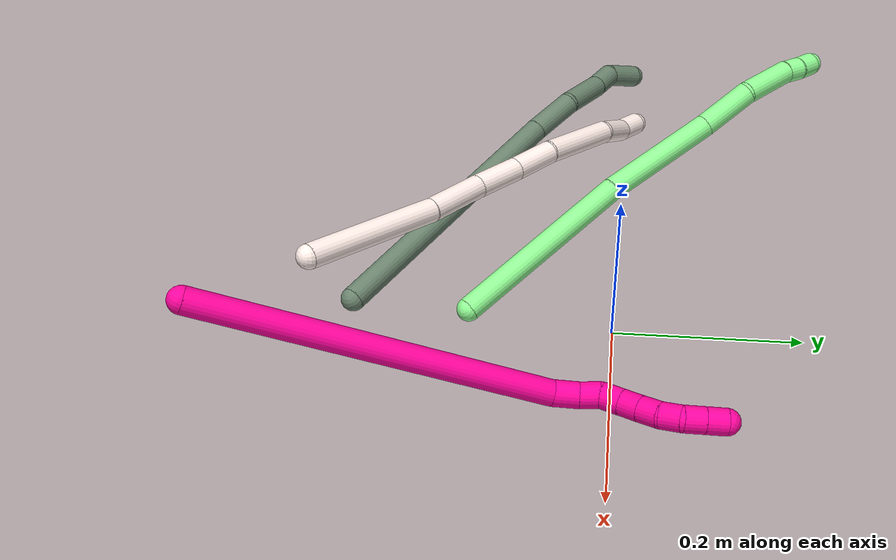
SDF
<sdf version="1.7">
 <world name="default">
  <model name="11">
   <static>0</static>
   <link name="11">
    <collision name="collision-cylinder-e_1_1_4">
     <pose>-0.00525 0.008821 -0.072069 -3.0198 -0.072176 1.06925</pose>
     <geometry><cylinder><radius>0.0125</radius><length>0.145593</length></cylinder></geometry>
     <surface>
      <friction><ode><mu>1.16</mu><mu2>1.16</mu2><slip1>0</slip1><slip2>0</slip2></ode></friction>
      <contact><ode><kp>1e+06</kp><kd>1</kd><max_vel>0</max_vel><min_depth>0.001</min_depth></ode></contact>
     </surface>
    </collision>
    <visual name="visual-cylinder-e_1_1_4">
     <pose>-0.00525 0.008821 -0.072069 -3.0198 -0.072176 1.06925</pose>
     <geometry><cylinder><radius>0.0125</radius><length>0.145593</length></cylinder></geometry>
     <material><ambient>1 0.933333 0.909804 1</ambient></material>
    </visual>
    <collision name="collision-cylinder-e_2_4_5">
     <pose>-0.016305 0.022563 -0.176524 -2.9908 -0.175404 1.72206</pose>
     <geometry><cylinder><radius>0.0125</radius><length>0.066535</length></cylinder></geometry>
     <surface>
      <friction><ode><mu>1.16</mu><mu2>1.16</mu2><slip1>0</slip1><slip2>0</slip2></ode></friction>
      <contact><ode><kp>1e+06</kp><kd>1</kd><max_vel>0</max_vel><min_depth>0.001</min_depth></ode></contact>
     </surface>
    </collision>
    <visual name="visual-cylinder-e_2_4_5">
     <pose>-0.016305 0.022563 -0.176524 -2.9908 -0.175404 1.72206</pose>
     <geometry><cylinder><radius>0.0125</radius><length>0.066535</length></cylinder></geometry>
     <material><ambient>1 0.933333 0.909804 1</ambient></material>
    </visual>
    <collision name="collision-cylinder-e_3_5_6">
     <pose>-0.024518 0.032556 -0.234959 -2.94928 -0.090473 0.87761</pose>
     <geometry><cylinder><radius>0.0125</radius><length>0.053295</length></cylinder></geometry>
     <surface>
      <friction><ode><mu>1.16</mu><mu2>1.16</mu2><slip1>0</slip1><slip2>0</slip2></ode></friction>
      <contact><ode><kp>1e+06</kp><kd>1</kd><max_vel>0</max_vel><min_depth>0.001</min_depth></ode></contact>
     </surface>
    </collision>
    <visual name="visual-cylinder-e_3_5_6">
     <pose>-0.024518 0.032556 -0.234959 -2.94928 -0.090473 0.87761</pose>
     <geometry><cylinder><radius>0.0125</radius><length>0.053295</length></cylinder></geometry>
     <material><ambient>1 0.933333 0.909804 1</ambient></material>
    </visual>
    <collision name="collision-cylinder-e_4_6_7">
     <pose>-0.029301 0.043234 -0.285303 -2.91483 -0.094997 0.790913</pose>
     <geometry><cylinder><radius>0.0125</radius><length>0.050094</length></cylinder></geometry>
     <surface>
      <friction><ode><mu>1.16</mu><mu2>1.16</mu2><slip1>0</slip1><slip2>0</slip2></ode></friction>
      <contact><ode><kp>1e+06</kp><kd>1</kd><max_vel>0</max_vel><min_depth>0.001</min_depth></ode></contact>
     </surface>
    </collision>
    <visual name="visual-cylinder-e_4_6_7">
     <pose>-0.029301 0.043234 -0.285303 -2.91483 -0.094997 0.790913</pose>
     <geometry><cylinder><radius>0.0125</radius><length>0.050094</length></cylinder></geometry>
     <material><ambient>1 0.933333 0.909804 1</ambient></material>
    </visual>
    <collision name="collision-cylinder-e_5_7_8">
     <pose>-0.039821 0.050392 -0.357003 -3.10885 -0.170051 2.76201</pose>
     <geometry><cylinder><radius>0.0125</radius><length>0.096247</length></cylinder></geometry>
     <surface>
      <friction><ode><mu>1.16</mu><mu2>1.16</mu2><slip1>0</slip1><slip2>0</slip2></ode></friction>
      <contact><ode><kp>1e+06</kp><kd>1</kd><max_vel>0</max_vel><min_depth>0.001</min_depth></ode></contact>
     </surface>
    </collision>
    <visual name="visual-cylinder-e_5_7_8">
     <pose>-0.039821 0.050392 -0.357003 -3.10885 -0.170051 2.76201</pose>
     <geometry><cylinder><radius>0.0125</radius><length>0.096247</length></cylinder></geometry>
     <material><ambient>1 0.933333 0.909804 1</ambient></material>
    </visual>
    <collision name="collision-cylinder-e_6_8_9">
     <pose>-0.057037 0.044581 -0.430078 2.86223 -0.32747 -1.73145</pose>
     <geometry><cylinder><radius>0.0125</radius><length>0.056412</length></cylinder></geometry>
     <surface>
      <friction><ode><mu>1.16</mu><mu2>1.16</mu2><slip1>0</slip1><slip2>0</slip2></ode></friction>
      <contact><ode><kp>1e+06</kp><kd>1</kd><max_vel>0</max_vel><min_depth>0.001</min_depth></ode></contact>
     </surface>
    </collision>
    <visual name="visual-cylinder-e_6_8_9">
     <pose>-0.057037 0.044581 -0.430078 2.86223 -0.32747 -1.73145</pose>
     <geometry><cylinder><radius>0.0125</radius><length>0.056412</length></cylinder></geometry>
     <material><ambient>1 0.933333 0.909804 1</ambient></material>
    </visual>
    <collision name="collision-cylinder-e_7_9_2">
     <pose>-0.069542 0.037802 -0.471276 -3.10389 -0.217436 2.79949</pose>
     <geometry><cylinder><radius>0.0125</radius><length>0.031825</length></cylinder></geometry>
     <surface>
      <friction><ode><mu>1.16</mu><mu2>1.16</mu2><slip1>0</slip1><slip2>0</slip2></ode></friction>
      <contact><ode><kp>1e+06</kp><kd>1</kd><max_vel>0</max_vel><min_depth>0.001</min_depth></ode></contact>
     </surface>
    </collision>
    <visual name="visual-cylinder-e_7_9_2">
     <pose>-0.069542 0.037802 -0.471276 -3.10389 -0.217436 2.79949</pose>
     <geometry><cylinder><radius>0.0125</radius><length>0.031825</length></cylinder></geometry>
     <material><ambient>1 0.933333 0.909804 1</ambient></material>
    </visual>
    <collision name="collision-sphere-2">
     <pose>-0.072975 0.038388 -0.486803 0 -0 0</pose>
     <geometry><sphere><radius>0.0125</radius></sphere></geometry>
     <surface>
      <friction><ode><mu>1.16</mu><mu2>1.16</mu2><slip1>0</slip1><slip2>0</slip2></ode></friction>
      <contact><ode><kp>1e+06</kp><kd>1</kd><max_vel>0</max_vel><min_depth>0.001</min_depth></ode></contact>
     </surface>
    </collision>
    <visual name="visual-sphere-2">
     <pose>-0.072975 0.038388 -0.486803 0 -0 0</pose>
     <geometry><sphere><radius>0.0125</radius></sphere></geometry>
     <material><ambient>1 0.933333 0.909804 1</ambient></material>
    </visual>
    <collision name="collision-sphere-9">
     <pose>-0.06611 0.037217 -0.45575 0 -0 0</pose>
     <geometry><sphere><radius>0.0125</radius></sphere></geometry>
     <surface>
      <friction><ode><mu>1.16</mu><mu2>1.16</mu2><slip1>0</slip1><slip2>0</slip2></ode></friction>
      <contact><ode><kp>1e+06</kp><kd>1</kd><max_vel>0</max_vel><min_depth>0.001</min_depth></ode></contact>
     </surface>
    </collision>
    <visual name="visual-sphere-9">
     <pose>-0.06611 0.037217 -0.45575 0 -0 0</pose>
     <geometry><sphere><radius>0.0125</radius></sphere></geometry>
     <material><ambient>1 0.933333 0.909804 1</ambient></material>
    </visual>
    <collision name="collision-sphere-4">
     <pose>-0.010499 0.017642 -0.144139 0 -0 0</pose>
     <geometry><sphere><radius>0.0125</radius></sphere></geometry>
     <surface>
      <friction><ode><mu>1.16</mu><mu2>1.16</mu2><slip1>0</slip1><slip2>0</slip2></ode></friction>
      <contact><ode><kp>1e+06</kp><kd>1</kd><max_vel>0</max_vel><min_depth>0.001</min_depth></ode></contact>
     </surface>
    </collision>
    <visual name="visual-sphere-4">
     <pose>-0.010499 0.017642 -0.144139 0 -0 0</pose>
     <geometry><sphere><radius>0.0125</radius></sphere></geometry>
     <material><ambient>1 0.933333 0.909804 1</ambient></material>
    </visual>
    <collision name="collision-sphere-1">
     <geometry><sphere><radius>0.0125</radius></sphere></geometry>
     <surface>
      <friction><ode><mu>1.16</mu><mu2>1.16</mu2><slip1>0</slip1><slip2>0</slip2></ode></friction>
      <contact><ode><kp>1e+06</kp><kd>1</kd><max_vel>0</max_vel><min_depth>0.001</min_depth></ode></contact>
     </surface>
    </collision>
    <visual name="visual-sphere-1">
     <geometry><sphere><radius>0.0125</radius></sphere></geometry>
     <material><ambient>1 0.933333 0.909804 1</ambient></material>
    </visual>
    <collision name="collision-sphere-8">
     <pose>-0.047965 0.051945 -0.404407 0 -0 0</pose>
     <geometry><sphere><radius>0.0125</radius></sphere></geometry>
     <surface>
      <friction><ode><mu>1.16</mu><mu2>1.16</mu2><slip1>0</slip1><slip2>0</slip2></ode></friction>
      <contact><ode><kp>1e+06</kp><kd>1</kd><max_vel>0</max_vel><min_depth>0.001</min_depth></ode></contact>
     </surface>
    </collision>
    <visual name="visual-sphere-8">
     <pose>-0.047965 0.051945 -0.404407 0 -0 0</pose>
     <geometry><sphere><radius>0.0125</radius></sphere></geometry>
     <material><ambient>1 0.933333 0.909804 1</ambient></material>
    </visual>
    <collision name="collision-sphere-5">
     <pose>-0.02211 0.027484 -0.20891 0 -0 0</pose>
     <geometry><sphere><radius>0.0125</radius></sphere></geometry>
     <surface>
      <friction><ode><mu>1.16</mu><mu2>1.16</mu2><slip1>0</slip1><slip2>0</slip2></ode></friction>
      <contact><ode><kp>1e+06</kp><kd>1</kd><max_vel>0</max_vel><min_depth>0.001</min_depth></ode></contact>
     </surface>
    </collision>
    <visual name="visual-sphere-5">
     <pose>-0.02211 0.027484 -0.20891 0 -0 0</pose>
     <geometry><sphere><radius>0.0125</radius></sphere></geometry>
     <material><ambient>1 0.933333 0.909804 1</ambient></material>
    </visual>
    <collision name="collision-sphere-6">
     <pose>-0.026925 0.037628 -0.261008 0 -0 0</pose>
     <geometry><sphere><radius>0.0125</radius></sphere></geometry>
     <surface>
      <friction><ode><mu>1.16</mu><mu2>1.16</mu2><slip1>0</slip1><slip2>0</slip2></ode></friction>
      <contact><ode><kp>1e+06</kp><kd>1</kd><max_vel>0</max_vel><min_depth>0.001</min_depth></ode></contact>
     </surface>
    </collision>
    <visual name="visual-sphere-6">
     <pose>-0.026925 0.037628 -0.261008 0 -0 0</pose>
     <geometry><sphere><radius>0.0125</radius></sphere></geometry>
     <material><ambient>1 0.933333 0.909804 1</ambient></material>
    </visual>
    <collision name="collision-sphere-7">
     <pose>-0.031677 0.04884 -0.309599 0 -0 0</pose>
     <geometry><sphere><radius>0.0125</radius></sphere></geometry>
     <surface>
      <friction><ode><mu>1.16</mu><mu2>1.16</mu2><slip1>0</slip1><slip2>0</slip2></ode></friction>
      <contact><ode><kp>1e+06</kp><kd>1</kd><max_vel>0</max_vel><min_depth>0.001</min_depth></ode></contact>
     </surface>
    </collision>
    <visual name="visual-sphere-7">
     <pose>-0.031677 0.04884 -0.309599 0 -0 0</pose>
     <geometry><sphere><radius>0.0125</radius></sphere></geometry>
     <material><ambient>1 0.933333 0.909804 1</ambient></material>
    </visual>
    <inertial>
     <pose>-0.027774 0.030509 -0.245344 0 -0 0</pose>
     <mass>0.5</mass>
     <inertia>
      <ixx>0.000347</ixx>
      <ixy>0</ixy>
      <ixz>0</ixz>
      <iyy>0.000238</iyy>
      <iyz>0</iyz>
      <izz>-3.2e-05</izz>
     </inertia>
    </inertial>
   </link>
   <pose>0.049439 -0.288396 0.161654 1.19171 -0.069021 0.728934</pose>
  </model>
  <model name="13">
   <static>0</static>
   <link name="13">
    <collision name="collision-cylinder-e_1_1_4">
     <pose>-0.070064 0.046318 -0.056813 -2.45761 -0.762822 1.68973</pose>
     <geometry><cylinder><radius>0.0125</radius><length>0.202802</length></cylinder></geometry>
     <surface>
      <friction><ode><mu>1.16</mu><mu2>1.16</mu2><slip1>0</slip1><slip2>0</slip2></ode></friction>
      <contact><ode><kp>1e+06</kp><kd>1</kd><max_vel>0</max_vel><min_depth>0.001</min_depth></ode></contact>
     </surface>
    </collision>
    <visual name="visual-cylinder-e_1_1_4">
     <pose>-0.070064 0.046318 -0.056813 -2.45761 -0.762822 1.68973</pose>
     <geometry><cylinder><radius>0.0125</radius><length>0.202802</length></cylinder></geometry>
     <material><ambient>0.564706 0.984314 0.572549 1</ambient></material>
    </visual>
    <collision name="collision-cylinder-e_2_4_5">
     <pose>-0.181278 0.126701 -0.150871 -2.40076 -0.683985 1.48389</pose>
     <geometry><cylinder><radius>0.0125</radius><length>0.130241</length></cylinder></geometry>
     <surface>
      <friction><ode><mu>1.16</mu><mu2>1.16</mu2><slip1>0</slip1><slip2>0</slip2></ode></friction>
      <contact><ode><kp>1e+06</kp><kd>1</kd><max_vel>0</max_vel><min_depth>0.001</min_depth></ode></contact>
     </surface>
    </collision>
    <visual name="visual-cylinder-e_2_4_5">
     <pose>-0.181278 0.126701 -0.150871 -2.40076 -0.683985 1.48389</pose>
     <geometry><cylinder><radius>0.0125</radius><length>0.130241</length></cylinder></geometry>
     <material><ambient>0.564706 0.984314 0.572549 1</ambient></material>
    </visual>
    <collision name="collision-cylinder-e_3_5_6">
     <pose>-0.243751 0.177591 -0.202603 -2.28165 -0.765174 1.4405</pose>
     <geometry><cylinder><radius>0.0125</radius><length>0.061571</length></cylinder></geometry>
     <surface>
      <friction><ode><mu>1.16</mu><mu2>1.16</mu2><slip1>0</slip1><slip2>0</slip2></ode></friction>
      <contact><ode><kp>1e+06</kp><kd>1</kd><max_vel>0</max_vel><min_depth>0.001</min_depth></ode></contact>
     </surface>
    </collision>
    <visual name="visual-cylinder-e_3_5_6">
     <pose>-0.243751 0.177591 -0.202603 -2.28165 -0.765174 1.4405</pose>
     <geometry><cylinder><radius>0.0125</radius><length>0.061571</length></cylinder></geometry>
     <material><ambient>0.564706 0.984314 0.572549 1</ambient></material>
    </visual>
    <collision name="collision-cylinder-e_4_6_7">
     <pose>-0.281189 0.208266 -0.240263 -2.60295 -0.538167 1.56986</pose>
     <geometry><cylinder><radius>0.0125</radius><length>0.062877</length></cylinder></geometry>
     <surface>
      <friction><ode><mu>1.16</mu><mu2>1.16</mu2><slip1>0</slip1><slip2>0</slip2></ode></friction>
      <contact><ode><kp>1e+06</kp><kd>1</kd><max_vel>0</max_vel><min_depth>0.001</min_depth></ode></contact>
     </surface>
    </collision>
    <visual name="visual-cylinder-e_4_6_7">
     <pose>-0.281189 0.208266 -0.240263 -2.60295 -0.538167 1.56986</pose>
     <geometry><cylinder><radius>0.0125</radius><length>0.062877</length></cylinder></geometry>
     <material><ambient>0.564706 0.984314 0.572549 1</ambient></material>
    </visual>
    <collision name="collision-cylinder-e_5_7_8">
     <pose>-0.300889 0.22756 -0.271151 -2.52694 -0.362876 1.04821</pose>
     <geometry><cylinder><radius>0.0125</radius><length>0.020204</length></cylinder></geometry>
     <surface>
      <friction><ode><mu>1.16</mu><mu2>1.16</mu2><slip1>0</slip1><slip2>0</slip2></ode></friction>
      <contact><ode><kp>1e+06</kp><kd>1</kd><max_vel>0</max_vel><min_depth>0.001</min_depth></ode></contact>
     </surface>
    </collision>
    <visual name="visual-cylinder-e_5_7_8">
     <pose>-0.300889 0.22756 -0.271151 -2.52694 -0.362876 1.04821</pose>
     <geometry><cylinder><radius>0.0125</radius><length>0.020204</length></cylinder></geometry>
     <material><ambient>0.564706 0.984314 0.572549 1</ambient></material>
    </visual>
    <collision name="collision-cylinder-e_6_8_2">
     <pose>-0.308927 0.237346 -0.288124 -2.7032 -0.410666 1.50351</pose>
     <geometry><cylinder><radius>0.0125</radius><length>0.022304</length></cylinder></geometry>
     <surface>
      <friction><ode><mu>1.16</mu><mu2>1.16</mu2><slip1>0</slip1><slip2>0</slip2></ode></friction>
      <contact><ode><kp>1e+06</kp><kd>1</kd><max_vel>0</max_vel><min_depth>0.001</min_depth></ode></contact>
     </surface>
    </collision>
    <visual name="visual-cylinder-e_6_8_2">
     <pose>-0.308927 0.237346 -0.288124 -2.7032 -0.410666 1.50351</pose>
     <geometry><cylinder><radius>0.0125</radius><length>0.022304</length></cylinder></geometry>
     <material><ambient>0.564706 0.984314 0.572549 1</ambient></material>
    </visual>
    <collision name="collision-sphere-2">
     <pose>-0.313379 0.241686 -0.297382 0 -0 0</pose>
     <geometry><sphere><radius>0.0125</radius></sphere></geometry>
     <surface>
      <friction><ode><mu>1.16</mu><mu2>1.16</mu2><slip1>0</slip1><slip2>0</slip2></ode></friction>
      <contact><ode><kp>1e+06</kp><kd>1</kd><max_vel>0</max_vel><min_depth>0.001</min_depth></ode></contact>
     </surface>
    </collision>
    <visual name="visual-sphere-2">
     <pose>-0.313379 0.241686 -0.297382 0 -0 0</pose>
     <geometry><sphere><radius>0.0125</radius></sphere></geometry>
     <material><ambient>0.564706 0.984314 0.572549 1</ambient></material>
    </visual>
    <collision name="collision-sphere-4">
     <pose>-0.140129 0.092636 -0.113627 0 -0 0</pose>
     <geometry><sphere><radius>0.0125</radius></sphere></geometry>
     <surface>
      <friction><ode><mu>1.16</mu><mu2>1.16</mu2><slip1>0</slip1><slip2>0</slip2></ode></friction>
      <contact><ode><kp>1e+06</kp><kd>1</kd><max_vel>0</max_vel><min_depth>0.001</min_depth></ode></contact>
     </surface>
    </collision>
    <visual name="visual-sphere-4">
     <pose>-0.140129 0.092636 -0.113627 0 -0 0</pose>
     <geometry><sphere><radius>0.0125</radius></sphere></geometry>
     <material><ambient>0.564706 0.984314 0.572549 1</ambient></material>
    </visual>
    <collision name="collision-sphere-1">
     <geometry><sphere><radius>0.0125</radius></sphere></geometry>
     <surface>
      <friction><ode><mu>1.16</mu><mu2>1.16</mu2><slip1>0</slip1><slip2>0</slip2></ode></friction>
      <contact><ode><kp>1e+06</kp><kd>1</kd><max_vel>0</max_vel><min_depth>0.001</min_depth></ode></contact>
     </surface>
    </collision>
    <visual name="visual-sphere-1">
     <geometry><sphere><radius>0.0125</radius></sphere></geometry>
     <material><ambient>0.564706 0.984314 0.572549 1</ambient></material>
    </visual>
    <collision name="collision-sphere-8">
     <pose>-0.304475 0.233006 -0.278866 0 -0 0</pose>
     <geometry><sphere><radius>0.0125</radius></sphere></geometry>
     <surface>
      <friction><ode><mu>1.16</mu><mu2>1.16</mu2><slip1>0</slip1><slip2>0</slip2></ode></friction>
      <contact><ode><kp>1e+06</kp><kd>1</kd><max_vel>0</max_vel><min_depth>0.001</min_depth></ode></contact>
     </surface>
    </collision>
    <visual name="visual-sphere-8">
     <pose>-0.304475 0.233006 -0.278866 0 -0 0</pose>
     <geometry><sphere><radius>0.0125</radius></sphere></geometry>
     <material><ambient>0.564706 0.984314 0.572549 1</ambient></material>
    </visual>
    <collision name="collision-sphere-5">
     <pose>-0.222427 0.160765 -0.188115 0 -0 0</pose>
     <geometry><sphere><radius>0.0125</radius></sphere></geometry>
     <surface>
      <friction><ode><mu>1.16</mu><mu2>1.16</mu2><slip1>0</slip1><slip2>0</slip2></ode></friction>
      <contact><ode><kp>1e+06</kp><kd>1</kd><max_vel>0</max_vel><min_depth>0.001</min_depth></ode></contact>
     </surface>
    </collision>
    <visual name="visual-sphere-5">
     <pose>-0.222427 0.160765 -0.188115 0 -0 0</pose>
     <geometry><sphere><radius>0.0125</radius></sphere></geometry>
     <material><ambient>0.564706 0.984314 0.572549 1</ambient></material>
    </visual>
    <collision name="collision-sphere-6">
     <pose>-0.265075 0.194418 -0.21709 0 -0 0</pose>
     <geometry><sphere><radius>0.0125</radius></sphere></geometry>
     <surface>
      <friction><ode><mu>1.16</mu><mu2>1.16</mu2><slip1>0</slip1><slip2>0</slip2></ode></friction>
      <contact><ode><kp>1e+06</kp><kd>1</kd><max_vel>0</max_vel><min_depth>0.001</min_depth></ode></contact>
     </surface>
    </collision>
    <visual name="visual-sphere-6">
     <pose>-0.265075 0.194418 -0.21709 0 -0 0</pose>
     <geometry><sphere><radius>0.0125</radius></sphere></geometry>
     <material><ambient>0.564706 0.984314 0.572549 1</ambient></material>
    </visual>
    <collision name="collision-sphere-7">
     <pose>-0.297303 0.222113 -0.263435 0 -0 0</pose>
     <geometry><sphere><radius>0.0125</radius></sphere></geometry>
     <surface>
      <friction><ode><mu>1.16</mu><mu2>1.16</mu2><slip1>0</slip1><slip2>0</slip2></ode></friction>
      <contact><ode><kp>1e+06</kp><kd>1</kd><max_vel>0</max_vel><min_depth>0.001</min_depth></ode></contact>
     </surface>
    </collision>
    <visual name="visual-sphere-7">
     <pose>-0.297303 0.222113 -0.263435 0 -0 0</pose>
     <geometry><sphere><radius>0.0125</radius></sphere></geometry>
     <material><ambient>0.564706 0.984314 0.572549 1</ambient></material>
    </visual>
    <inertial>
     <pose>-0.166954 0.119632 -0.141315 0 -0 0</pose>
     <mass>0.5</mass>
     <inertia>
      <ixx>0.00062</ixx>
      <ixy>0</ixy>
      <ixz>0</ixz>
      <iyy>0.001161</iyy>
      <iyz>0</iyz>
      <izz>0.000167</izz>
     </inertia>
    </inertial>
   </link>
   <pose>0.024398 -0.146415 0.06028 0.285339 0.74671 -0.118737</pose>
  </model>
  <model name="17">
   <static>0</static>
   <link name="17">
    <collision name="collision-cylinder-e_1_1_4">
     <pose>-0.113923 0.092383 -0.046638 -2.03831 -0.833361 1.24704</pose>
     <geometry><cylinder><radius>0.0125</radius><length>0.307819</length></cylinder></geometry>
     <surface>
      <friction><ode><mu>1.16</mu><mu2>1.16</mu2><slip1>0</slip1><slip2>0</slip2></ode></friction>
      <contact><ode><kp>1e+06</kp><kd>1</kd><max_vel>0</max_vel><min_depth>0.001</min_depth></ode></contact>
     </surface>
    </collision>
    <visual name="visual-cylinder-e_1_1_4">
     <pose>-0.113923 0.092383 -0.046638 -2.03831 -0.833361 1.24704</pose>
     <geometry><cylinder><radius>0.0125</radius><length>0.307819</length></cylinder></geometry>
     <material><ambient>0.415686 0.509804 0.423529 1</ambient></material>
    </visual>
    <collision name="collision-cylinder-e_2_4_5">
     <pose>-0.246747 0.204281 -0.100369 -1.91938 -0.73844 1.0093</pose>
     <geometry><cylinder><radius>0.0125</radius><length>0.056158</length></cylinder></geometry>
     <surface>
      <friction><ode><mu>1.16</mu><mu2>1.16</mu2><slip1>0</slip1><slip2>0</slip2></ode></friction>
      <contact><ode><kp>1e+06</kp><kd>1</kd><max_vel>0</max_vel><min_depth>0.001</min_depth></ode></contact>
     </surface>
    </collision>
    <visual name="visual-cylinder-e_2_4_5">
     <pose>-0.246747 0.204281 -0.100369 -1.91938 -0.73844 1.0093</pose>
     <geometry><cylinder><radius>0.0125</radius><length>0.056158</length></cylinder></geometry>
     <material><ambient>0.415686 0.509804 0.423529 1</ambient></material>
    </visual>
    <collision name="collision-cylinder-e_3_5_6">
     <pose>-0.286946 0.238335 -0.123637 -2.40948 -0.774926 1.63334</pose>
     <geometry><cylinder><radius>0.0125</radius><length>0.060881</length></cylinder></geometry>
     <surface>
      <friction><ode><mu>1.16</mu><mu2>1.16</mu2><slip1>0</slip1><slip2>0</slip2></ode></friction>
      <contact><ode><kp>1e+06</kp><kd>1</kd><max_vel>0</max_vel><min_depth>0.001</min_depth></ode></contact>
     </surface>
    </collision>
    <visual name="visual-cylinder-e_3_5_6">
     <pose>-0.286946 0.238335 -0.123637 -2.40948 -0.774926 1.63334</pose>
     <geometry><cylinder><radius>0.0125</radius><length>0.060881</length></cylinder></geometry>
     <material><ambient>0.415686 0.509804 0.423529 1</ambient></material>
    </visual>
    <collision name="collision-cylinder-e_4_6_7">
     <pose>-0.321004 0.260586 -0.147564 -2.35864 -0.862307 1.67893</pose>
     <geometry><cylinder><radius>0.0125</radius><length>0.033607</length></cylinder></geometry>
     <surface>
      <friction><ode><mu>1.16</mu><mu2>1.16</mu2><slip1>0</slip1><slip2>0</slip2></ode></friction>
      <contact><ode><kp>1e+06</kp><kd>1</kd><max_vel>0</max_vel><min_depth>0.001</min_depth></ode></contact>
     </surface>
    </collision>
    <visual name="visual-cylinder-e_4_6_7">
     <pose>-0.321004 0.260586 -0.147564 -2.35864 -0.862307 1.67893</pose>
     <geometry><cylinder><radius>0.0125</radius><length>0.033607</length></cylinder></geometry>
     <material><ambient>0.415686 0.509804 0.423529 1</ambient></material>
    </visual>
    <collision name="collision-cylinder-e_5_7_2">
     <pose>-0.341307 0.280382 -0.170426 -2.46707 -0.371729 0.984424</pose>
     <geometry><cylinder><radius>0.0125</radius><length>0.041535</length></cylinder></geometry>
     <surface>
      <friction><ode><mu>1.16</mu><mu2>1.16</mu2><slip1>0</slip1><slip2>0</slip2></ode></friction>
      <contact><ode><kp>1e+06</kp><kd>1</kd><max_vel>0</max_vel><min_depth>0.001</min_depth></ode></contact>
     </surface>
    </collision>
    <visual name="visual-cylinder-e_5_7_2">
     <pose>-0.341307 0.280382 -0.170426 -2.46707 -0.371729 0.984424</pose>
     <geometry><cylinder><radius>0.0125</radius><length>0.041535</length></cylinder></geometry>
     <material><ambient>0.415686 0.509804 0.423529 1</ambient></material>
    </visual>
    <collision name="collision-sphere-2">
     <pose>-0.34885 0.292466 -0.185538 0 -0 0</pose>
     <geometry><sphere><radius>0.0125</radius></sphere></geometry>
     <surface>
      <friction><ode><mu>1.16</mu><mu2>1.16</mu2><slip1>0</slip1><slip2>0</slip2></ode></friction>
      <contact><ode><kp>1e+06</kp><kd>1</kd><max_vel>0</max_vel><min_depth>0.001</min_depth></ode></contact>
     </surface>
    </collision>
    <visual name="visual-sphere-2">
     <pose>-0.34885 0.292466 -0.185538 0 -0 0</pose>
     <geometry><sphere><radius>0.0125</radius></sphere></geometry>
     <material><ambient>0.415686 0.509804 0.423529 1</ambient></material>
    </visual>
    <collision name="collision-sphere-7">
     <pose>-0.333764 0.268298 -0.155314 0 -0 0</pose>
     <geometry><sphere><radius>0.0125</radius></sphere></geometry>
     <surface>
      <friction><ode><mu>1.16</mu><mu2>1.16</mu2><slip1>0</slip1><slip2>0</slip2></ode></friction>
      <contact><ode><kp>1e+06</kp><kd>1</kd><max_vel>0</max_vel><min_depth>0.001</min_depth></ode></contact>
     </surface>
    </collision>
    <visual name="visual-sphere-7">
     <pose>-0.333764 0.268298 -0.155314 0 -0 0</pose>
     <geometry><sphere><radius>0.0125</radius></sphere></geometry>
     <material><ambient>0.415686 0.509804 0.423529 1</ambient></material>
    </visual>
    <collision name="collision-sphere-6">
     <pose>-0.308244 0.252873 -0.139813 0 -0 0</pose>
     <geometry><sphere><radius>0.0125</radius></sphere></geometry>
     <surface>
      <friction><ode><mu>1.16</mu><mu2>1.16</mu2><slip1>0</slip1><slip2>0</slip2></ode></friction>
      <contact><ode><kp>1e+06</kp><kd>1</kd><max_vel>0</max_vel><min_depth>0.001</min_depth></ode></contact>
     </surface>
    </collision>
    <visual name="visual-sphere-6">
     <pose>-0.308244 0.252873 -0.139813 0 -0 0</pose>
     <geometry><sphere><radius>0.0125</radius></sphere></geometry>
     <material><ambient>0.415686 0.509804 0.423529 1</ambient></material>
    </visual>
    <collision name="collision-sphere-5">
     <pose>-0.265648 0.223797 -0.107461 0 -0 0</pose>
     <geometry><sphere><radius>0.0125</radius></sphere></geometry>
     <surface>
      <friction><ode><mu>1.16</mu><mu2>1.16</mu2><slip1>0</slip1><slip2>0</slip2></ode></friction>
      <contact><ode><kp>1e+06</kp><kd>1</kd><max_vel>0</max_vel><min_depth>0.001</min_depth></ode></contact>
     </surface>
    </collision>
    <visual name="visual-sphere-5">
     <pose>-0.265648 0.223797 -0.107461 0 -0 0</pose>
     <geometry><sphere><radius>0.0125</radius></sphere></geometry>
     <material><ambient>0.415686 0.509804 0.423529 1</ambient></material>
    </visual>
    <collision name="collision-sphere-1">
     <geometry><sphere><radius>0.0125</radius></sphere></geometry>
     <surface>
      <friction><ode><mu>1.16</mu><mu2>1.16</mu2><slip1>0</slip1><slip2>0</slip2></ode></friction>
      <contact><ode><kp>1e+06</kp><kd>1</kd><max_vel>0</max_vel><min_depth>0.001</min_depth></ode></contact>
     </surface>
    </collision>
    <visual name="visual-sphere-1">
     <geometry><sphere><radius>0.0125</radius></sphere></geometry>
     <material><ambient>0.415686 0.509804 0.423529 1</ambient></material>
    </visual>
    <collision name="collision-sphere-4">
     <pose>-0.227846 0.184765 -0.093276 0 -0 0</pose>
     <geometry><sphere><radius>0.0125</radius></sphere></geometry>
     <surface>
      <friction><ode><mu>1.16</mu><mu2>1.16</mu2><slip1>0</slip1><slip2>0</slip2></ode></friction>
      <contact><ode><kp>1e+06</kp><kd>1</kd><max_vel>0</max_vel><min_depth>0.001</min_depth></ode></contact>
     </surface>
    </collision>
    <visual name="visual-sphere-4">
     <pose>-0.227846 0.184765 -0.093276 0 -0 0</pose>
     <geometry><sphere><radius>0.0125</radius></sphere></geometry>
     <material><ambient>0.415686 0.509804 0.423529 1</ambient></material>
    </visual>
    <inertial>
     <pose>-0.182717 0.149645 -0.079115 0 -0 0</pose>
     <mass>0.5</mass>
     <inertia>
      <ixx>0.002096</ixx>
      <ixy>0</ixy>
      <ixz>0</ixz>
      <iyy>0.002812</iyy>
      <iyz>0</iyz>
      <izz>0.000331</izz>
     </inertia>
    </inertial>
   </link>
   <pose>0.03254 -0.260334 0.078003 0.329764 0.094229 0.168561</pose>
  </model>
  <model name="18">
   <static>0</static>
   <link name="18">
    <collision name="collision-cylinder-e_1_1_4">
     <pose>-0.01245 0.048781 -0.159266 -2.84438 -0.074604 0.488597</pose>
     <geometry><cylinder><radius>0.0125</radius><length>0.334066</length></cylinder></geometry>
     <surface>
      <friction><ode><mu>1.16</mu><mu2>1.16</mu2><slip1>0</slip1><slip2>0</slip2></ode></friction>
      <contact><ode><kp>1e+06</kp><kd>1</kd><max_vel>0</max_vel><min_depth>0.001</min_depth></ode></contact>
     </surface>
    </collision>
    <visual name="visual-cylinder-e_1_1_4">
     <pose>-0.01245 0.048781 -0.159266 -2.84438 -0.074604 0.488597</pose>
     <geometry><cylinder><radius>0.0125</radius><length>0.334066</length></cylinder></geometry>
     <material><ambient>1 0.007843 0.615686 1</ambient></material>
    </visual>
    <collision name="collision-cylinder-e_2_4_5">
     <pose>-0.022149 0.100833 -0.330334 -2.87123 0.220888 -1.36807</pose>
     <geometry><cylinder><radius>0.0125</radius><length>0.025106</length></cylinder></geometry>
     <surface>
      <friction><ode><mu>1.16</mu><mu2>1.16</mu2><slip1>0</slip1><slip2>0</slip2></ode></friction>
      <contact><ode><kp>1e+06</kp><kd>1</kd><max_vel>0</max_vel><min_depth>0.001</min_depth></ode></contact>
     </surface>
    </collision>
    <visual name="visual-cylinder-e_2_4_5">
     <pose>-0.022149 0.100833 -0.330334 -2.87123 0.220888 -1.36807</pose>
     <geometry><cylinder><radius>0.0125</radius><length>0.025106</length></cylinder></geometry>
     <material><ambient>1 0.007843 0.615686 1</ambient></material>
    </visual>
    <collision name="collision-cylinder-e_3_5_6">
     <pose>-0.015184 0.106121 -0.351038 -2.91874 0.432641 -2.19971</pose>
     <geometry><cylinder><radius>0.0125</radius><length>0.020106</length></cylinder></geometry>
     <surface>
      <friction><ode><mu>1.16</mu><mu2>1.16</mu2><slip1>0</slip1><slip2>0</slip2></ode></friction>
      <contact><ode><kp>1e+06</kp><kd>1</kd><max_vel>0</max_vel><min_depth>0.001</min_depth></ode></contact>
     </surface>
    </collision>
    <visual name="visual-cylinder-e_3_5_6">
     <pose>-0.015184 0.106121 -0.351038 -2.91874 0.432641 -2.19971</pose>
     <geometry><cylinder><radius>0.0125</radius><length>0.020106</length></cylinder></geometry>
     <material><ambient>1 0.007843 0.615686 1</ambient></material>
    </visual>
    <collision name="collision-cylinder-e_4_6_7">
     <pose>-0.007293 0.10627 -0.369201 2.9426 0.371062 2.16395</pose>
     <geometry><cylinder><radius>0.0125</radius><length>0.020276</length></cylinder></geometry>
     <surface>
      <friction><ode><mu>1.16</mu><mu2>1.16</mu2><slip1>0</slip1><slip2>0</slip2></ode></friction>
      <contact><ode><kp>1e+06</kp><kd>1</kd><max_vel>0</max_vel><min_depth>0.001</min_depth></ode></contact>
     </surface>
    </collision>
    <visual name="visual-cylinder-e_4_6_7">
     <pose>-0.007293 0.10627 -0.369201 2.9426 0.371062 2.16395</pose>
     <geometry><cylinder><radius>0.0125</radius><length>0.020276</length></cylinder></geometry>
     <material><ambient>1 0.007843 0.615686 1</ambient></material>
    </visual>
    <collision name="collision-cylinder-e_5_7_8">
     <pose>0.001381 0.101213 -0.386672 2.77104 0.516137 1.90668</pose>
     <geometry><cylinder><radius>0.0125</radius><length>0.020254</length></cylinder></geometry>
     <surface>
      <friction><ode><mu>1.16</mu><mu2>1.16</mu2><slip1>0</slip1><slip2>0</slip2></ode></friction>
      <contact><ode><kp>1e+06</kp><kd>1</kd><max_vel>0</max_vel><min_depth>0.001</min_depth></ode></contact>
     </surface>
    </collision>
    <visual name="visual-cylinder-e_5_7_8">
     <pose>0.001381 0.101213 -0.386672 2.77104 0.516137 1.90668</pose>
     <geometry><cylinder><radius>0.0125</radius><length>0.020254</length></cylinder></geometry>
     <material><ambient>1 0.007843 0.615686 1</ambient></material>
    </visual>
    <collision name="collision-cylinder-e_6_8_9">
     <pose>0.011529 0.094976 -0.402922 2.77929 0.539643 1.97169</pose>
     <geometry><cylinder><radius>0.0125</radius><length>0.020045</length></cylinder></geometry>
     <surface>
      <friction><ode><mu>1.16</mu><mu2>1.16</mu2><slip1>0</slip1><slip2>0</slip2></ode></friction>
      <contact><ode><kp>1e+06</kp><kd>1</kd><max_vel>0</max_vel><min_depth>0.001</min_depth></ode></contact>
     </surface>
    </collision>
    <visual name="visual-cylinder-e_6_8_9">
     <pose>0.011529 0.094976 -0.402922 2.77929 0.539643 1.97169</pose>
     <geometry><cylinder><radius>0.0125</radius><length>0.020045</length></cylinder></geometry>
     <material><ambient>1 0.007843 0.615686 1</ambient></material>
    </visual>
    <collision name="collision-cylinder-e_7_9_10">
     <pose>0.021602 0.091159 -0.419683 3.05354 0.512332 2.80832</pose>
     <geometry><cylinder><radius>0.0125</radius><length>0.020087</length></cylinder></geometry>
     <surface>
      <friction><ode><mu>1.16</mu><mu2>1.16</mu2><slip1>0</slip1><slip2>0</slip2></ode></friction>
      <contact><ode><kp>1e+06</kp><kd>1</kd><max_vel>0</max_vel><min_depth>0.001</min_depth></ode></contact>
     </surface>
    </collision>
    <visual name="visual-cylinder-e_7_9_10">
     <pose>0.021602 0.091159 -0.419683 3.05354 0.512332 2.80832</pose>
     <geometry><cylinder><radius>0.0125</radius><length>0.020087</length></cylinder></geometry>
     <material><ambient>1 0.007843 0.615686 1</ambient></material>
    </visual>
    <collision name="collision-cylinder-e_8_10_11">
     <pose>0.028938 0.092974 -0.437785 -2.87271 0.243003 -1.46865</pose>
     <geometry><cylinder><radius>0.0125</radius><length>0.020054</length></cylinder></geometry>
     <surface>
      <friction><ode><mu>1.16</mu><mu2>1.16</mu2><slip1>0</slip1><slip2>0</slip2></ode></friction>
      <contact><ode><kp>1e+06</kp><kd>1</kd><max_vel>0</max_vel><min_depth>0.001</min_depth></ode></contact>
     </surface>
    </collision>
    <visual name="visual-cylinder-e_8_10_11">
     <pose>0.028938 0.092974 -0.437785 -2.87271 0.243003 -1.46865</pose>
     <geometry><cylinder><radius>0.0125</radius><length>0.020054</length></cylinder></geometry>
     <material><ambient>1 0.007843 0.615686 1</ambient></material>
    </visual>
    <collision name="collision-cylinder-e_9_11_2">
     <pose>0.033623 0.098229 -0.456536 -2.86402 0.229187 -1.37838</pose>
     <geometry><cylinder><radius>0.0125</radius><length>0.020006</length></cylinder></geometry>
     <surface>
      <friction><ode><mu>1.16</mu><mu2>1.16</mu2><slip1>0</slip1><slip2>0</slip2></ode></friction>
      <contact><ode><kp>1e+06</kp><kd>1</kd><max_vel>0</max_vel><min_depth>0.001</min_depth></ode></contact>
     </surface>
    </collision>
    <visual name="visual-cylinder-e_9_11_2">
     <pose>0.033623 0.098229 -0.456536 -2.86402 0.229187 -1.37838</pose>
     <geometry><cylinder><radius>0.0125</radius><length>0.020006</length></cylinder></geometry>
     <material><ambient>1 0.007843 0.615686 1</ambient></material>
    </visual>
    <collision name="collision-sphere-2">
     <pose>0.035896 0.100898 -0.465905 0 -0 0</pose>
     <geometry><sphere><radius>0.0125</radius></sphere></geometry>
     <surface>
      <friction><ode><mu>1.16</mu><mu2>1.16</mu2><slip1>0</slip1><slip2>0</slip2></ode></friction>
      <contact><ode><kp>1e+06</kp><kd>1</kd><max_vel>0</max_vel><min_depth>0.001</min_depth></ode></contact>
     </surface>
    </collision>
    <visual name="visual-sphere-2">
     <pose>0.035896 0.100898 -0.465905 0 -0 0</pose>
     <geometry><sphere><radius>0.0125</radius></sphere></geometry>
     <material><ambient>1 0.007843 0.615686 1</ambient></material>
    </visual>
    <collision name="collision-sphere-11">
     <pose>0.031351 0.09556 -0.447168 0 -0 0</pose>
     <geometry><sphere><radius>0.0125</radius></sphere></geometry>
     <surface>
      <friction><ode><mu>1.16</mu><mu2>1.16</mu2><slip1>0</slip1><slip2>0</slip2></ode></friction>
      <contact><ode><kp>1e+06</kp><kd>1</kd><max_vel>0</max_vel><min_depth>0.001</min_depth></ode></contact>
     </surface>
    </collision>
    <visual name="visual-sphere-11">
     <pose>0.031351 0.09556 -0.447168 0 -0 0</pose>
     <geometry><sphere><radius>0.0125</radius></sphere></geometry>
     <material><ambient>1 0.007843 0.615686 1</ambient></material>
    </visual>
    <collision name="collision-sphere-10">
     <pose>0.026526 0.090389 -0.428403 0 -0 0</pose>
     <geometry><sphere><radius>0.0125</radius></sphere></geometry>
     <surface>
      <friction><ode><mu>1.16</mu><mu2>1.16</mu2><slip1>0</slip1><slip2>0</slip2></ode></friction>
      <contact><ode><kp>1e+06</kp><kd>1</kd><max_vel>0</max_vel><min_depth>0.001</min_depth></ode></contact>
     </surface>
    </collision>
    <visual name="visual-sphere-10">
     <pose>0.026526 0.090389 -0.428403 0 -0 0</pose>
     <geometry><sphere><radius>0.0125</radius></sphere></geometry>
     <material><ambient>1 0.007843 0.615686 1</ambient></material>
    </visual>
    <collision name="collision-sphere-9">
     <pose>0.016679 0.091928 -0.410963 0 -0 0</pose>
     <geometry><sphere><radius>0.0125</radius></sphere></geometry>
     <surface>
      <friction><ode><mu>1.16</mu><mu2>1.16</mu2><slip1>0</slip1><slip2>0</slip2></ode></friction>
      <contact><ode><kp>1e+06</kp><kd>1</kd><max_vel>0</max_vel><min_depth>0.001</min_depth></ode></contact>
     </surface>
    </collision>
    <visual name="visual-sphere-9">
     <pose>0.016679 0.091928 -0.410963 0 -0 0</pose>
     <geometry><sphere><radius>0.0125</radius></sphere></geometry>
     <material><ambient>1 0.007843 0.615686 1</ambient></material>
    </visual>
    <collision name="collision-sphere-4">
     <pose>-0.0249 0.097562 -0.318531 0 -0 0</pose>
     <geometry><sphere><radius>0.0125</radius></sphere></geometry>
     <surface>
      <friction><ode><mu>1.16</mu><mu2>1.16</mu2><slip1>0</slip1><slip2>0</slip2></ode></friction>
      <contact><ode><kp>1e+06</kp><kd>1</kd><max_vel>0</max_vel><min_depth>0.001</min_depth></ode></contact>
     </surface>
    </collision>
    <visual name="visual-sphere-4">
     <pose>-0.0249 0.097562 -0.318531 0 -0 0</pose>
     <geometry><sphere><radius>0.0125</radius></sphere></geometry>
     <material><ambient>1 0.007843 0.615686 1</ambient></material>
    </visual>
    <collision name="collision-sphere-1">
     <geometry><sphere><radius>0.0125</radius></sphere></geometry>
     <surface>
      <friction><ode><mu>1.16</mu><mu2>1.16</mu2><slip1>0</slip1><slip2>0</slip2></ode></friction>
      <contact><ode><kp>1e+06</kp><kd>1</kd><max_vel>0</max_vel><min_depth>0.001</min_depth></ode></contact>
     </surface>
    </collision>
    <visual name="visual-sphere-1">
     <geometry><sphere><radius>0.0125</radius></sphere></geometry>
     <material><ambient>1 0.007843 0.615686 1</ambient></material>
    </visual>
    <collision name="collision-sphere-8">
     <pose>0.006379 0.098023 -0.394882 0 -0 0</pose>
     <geometry><sphere><radius>0.0125</radius></sphere></geometry>
     <surface>
      <friction><ode><mu>1.16</mu><mu2>1.16</mu2><slip1>0</slip1><slip2>0</slip2></ode></friction>
      <contact><ode><kp>1e+06</kp><kd>1</kd><max_vel>0</max_vel><min_depth>0.001</min_depth></ode></contact>
     </surface>
    </collision>
    <visual name="visual-sphere-8">
     <pose>0.006379 0.098023 -0.394882 0 -0 0</pose>
     <geometry><sphere><radius>0.0125</radius></sphere></geometry>
     <material><ambient>1 0.007843 0.615686 1</ambient></material>
    </visual>
    <collision name="collision-sphere-5">
     <pose>-0.019399 0.104104 -0.342137 0 -0 0</pose>
     <geometry><sphere><radius>0.0125</radius></sphere></geometry>
     <surface>
      <friction><ode><mu>1.16</mu><mu2>1.16</mu2><slip1>0</slip1><slip2>0</slip2></ode></friction>
      <contact><ode><kp>1e+06</kp><kd>1</kd><max_vel>0</max_vel><min_depth>0.001</min_depth></ode></contact>
     </surface>
    </collision>
    <visual name="visual-sphere-5">
     <pose>-0.019399 0.104104 -0.342137 0 -0 0</pose>
     <geometry><sphere><radius>0.0125</radius></sphere></geometry>
     <material><ambient>1 0.007843 0.615686 1</ambient></material>
    </visual>
    <collision name="collision-sphere-6">
     <pose>-0.010969 0.108138 -0.359939 0 -0 0</pose>
     <geometry><sphere><radius>0.0125</radius></sphere></geometry>
     <surface>
      <friction><ode><mu>1.16</mu><mu2>1.16</mu2><slip1>0</slip1><slip2>0</slip2></ode></friction>
      <contact><ode><kp>1e+06</kp><kd>1</kd><max_vel>0</max_vel><min_depth>0.001</min_depth></ode></contact>
     </surface>
    </collision>
    <visual name="visual-sphere-6">
     <pose>-0.010969 0.108138 -0.359939 0 -0 0</pose>
     <geometry><sphere><radius>0.0125</radius></sphere></geometry>
     <material><ambient>1 0.007843 0.615686 1</ambient></material>
    </visual>
    <collision name="collision-sphere-7">
     <pose>-0.003617 0.104403 -0.378463 0 -0 0</pose>
     <geometry><sphere><radius>0.0125</radius></sphere></geometry>
     <surface>
      <friction><ode><mu>1.16</mu><mu2>1.16</mu2><slip1>0</slip1><slip2>0</slip2></ode></friction>
      <contact><ode><kp>1e+06</kp><kd>1</kd><max_vel>0</max_vel><min_depth>0.001</min_depth></ode></contact>
     </surface>
    </collision>
    <visual name="visual-sphere-7">
     <pose>-0.003617 0.104403 -0.378463 0 -0 0</pose>
     <geometry><sphere><radius>0.0125</radius></sphere></geometry>
     <material><ambient>1 0.007843 0.615686 1</ambient></material>
    </visual>
    <inertial>
     <pose>-0.006445 0.065461 -0.236587 0 -0 0</pose>
     <mass>0.5</mass>
     <inertia>
      <ixx>0.004205</ixx>
      <ixy>0</ixy>
      <ixz>0</ixz>
      <iyy>-0.001132</iyy>
      <iyz>0</iyz>
      <izz>-0.00072</izz>
     </inertia>
    </inertial>
   </link>
   <pose>0.167235 -0.357709 0.240467 -0.406374 -1.21734 1.75759</pose>
  </model>
 </world>
</sdf>
